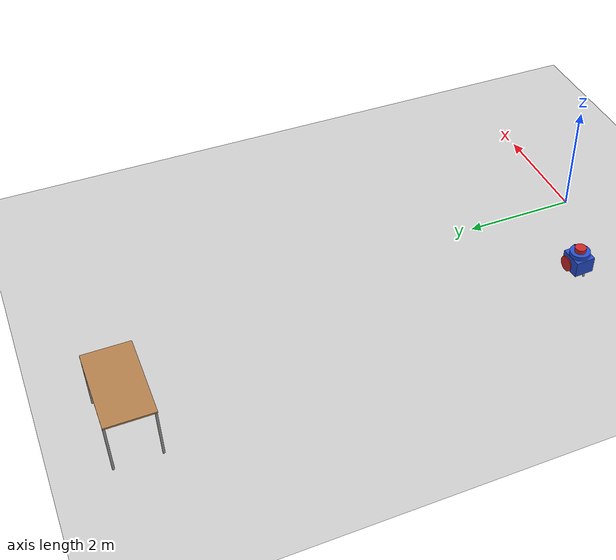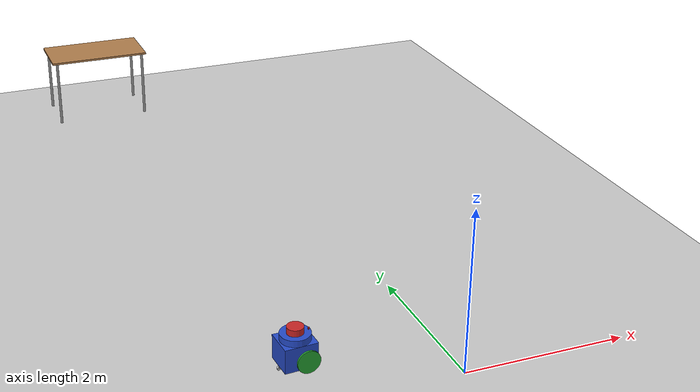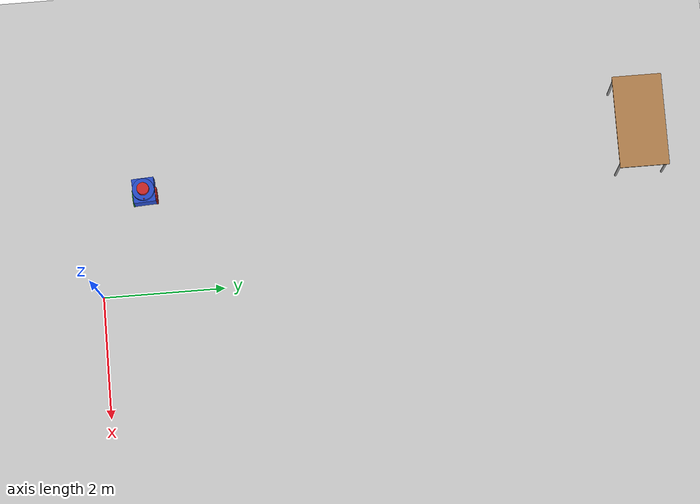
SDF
<sdf version="1.7">
 <world name="default">
  <light name="sun" type="directional">
   <pose>0 0 10 0 -0 0</pose>
   <diffuse>0.8 0.8 0.8 1</diffuse>
   <specular>0.2 0.2 0.2 1</specular>
   <attenuation>
    <range>1000</range>
    <constant>0.9</constant>
    <linear>0.01</linear>
    <quadratic>0.001</quadratic>
   </attenuation>
   <direction>-0.5 0.1 -0.9</direction>
   <spot><inner_angle>0</inner_angle><outer_angle>0</outer_angle><falloff>0</falloff></spot>
  </light>
  <gravity>0 0 -9.8</gravity>
  <magnetic_field>6e-06 2.3e-05 -4.2e-05</magnetic_field>
  <atmosphere type="adiabatic"/>
  <physics type="ode">
   <max_step_size>0.001</max_step_size>
   <real_time_factor>1</real_time_factor>
   <real_time_update_rate>1000</real_time_update_rate>
  </physics>
  <scene><ambient>0.4 0.4 0.4 1</ambient><background>0.7 0.7 0.7 1</background><shadows>1</shadows></scene>
  <spherical_coordinates>
   <surface_model>EARTH_WGS84</surface_model>
   <latitude_deg>0</latitude_deg>
   <longitude_deg>0</longitude_deg>
   <elevation>0</elevation>
   <heading_deg>0</heading_deg>
  </spherical_coordinates>
  <model name="subsumption_robot">
   <link name="base_footprint">
    <inertial>
     <pose>9.5e-05 0 0.296121 0 -0 0</pose>
     <mass>16.91</mass>
     <inertia>
      <ixx>0.381416</ixx>
      <ixy>0</ixy>
      <ixz>-0.000230207</ixz>
      <iyy>0.402951</iyy>
      <iyz>0</iyz>
      <izz>0.311837</izz>
     </inertia>
    </inertial>
    <collision name="base_footprint_fixed_joint_lump__base_link_collision">
     <pose>0 0 0.2 0 -0 0</pose>
     <geometry><box><size>0.4 0.36 0.3</size></box></geometry>
    </collision>
    <collision name="base_footprint_fixed_joint_lump__sonar_link_collision_1">
     <pose>0 0 0.39 0 -0 0</pose>
     <geometry><cylinder><length>0.08</length><radius>0.18</radius></cylinder></geometry>
    </collision>
    <collision name="base_footprint_fixed_joint_lump__camera_link_collision_2">
     <pose>0.16 0 0.44 0 -0 0</pose>
     <geometry><box><size>0.02 0.02 0.02</size></box></geometry>
    </collision>
    <collision name="base_footprint_fixed_joint_lump__laser_link_collision_3">
     <pose>0 0 0.47 0 -0 0</pose>
     <geometry><cylinder><length>0.08</length><radius>0.1</radius></cylinder></geometry>
    </collision>
    <visual name="base_footprint_fixed_joint_lump__base_link_visual">
     <pose>0 0 0.2 0 -0 0</pose>
     <geometry><box><size>0.4 0.36 0.3</size></box></geometry>
     <material>
      <script><name>Gazebo/Blue</name><uri>file://media/materials/scripts/gazebo.material</uri></script>
     </material>
    </visual>
    <visual name="base_footprint_fixed_joint_lump__sonar_link_visual_1">
     <pose>0 0 0.39 0 -0 0</pose>
     <geometry><cylinder><length>0.08</length><radius>0.18</radius></cylinder></geometry>
     <material>
      <script><name>Gazebo/Blue</name><uri>file://media/materials/scripts/gazebo.material</uri></script>
     </material>
    </visual>
    <visual name="base_footprint_fixed_joint_lump__camera_link_visual_2">
     <pose>0.16 0 0.44 0 -0 0</pose>
     <geometry><box><size>0.02 0.02 0.02</size></box></geometry>
     <material>
      <script><name>Gazebo/Red</name><uri>file://media/materials/scripts/gazebo.material</uri></script>
     </material>
    </visual>
    <visual name="base_footprint_fixed_joint_lump__laser_link_visual_3">
     <pose>0 0 0.47 0 -0 0</pose>
     <geometry><cylinder><length>0.08</length><radius>0.1</radius></cylinder></geometry>
     <material>
      <script><name>Gazebo/Red</name><uri>file://media/materials/scripts/gazebo.material</uri></script>
     </material>
    </visual>
    <sensor name="camera" type="camera">
     <visualize>1</visualize>
     <camera>
      <horizontal_fov>1.13443</horizontal_fov>
      <image><format>R8G8B8</format><width>640</width><height>480</height></image>
      <clip><near>0.05</near><far>50</far></clip>
     </camera>
     <plugin name="camera_controller" filename="libgazebo_ros_camera.so">
      <camera_name>mycamera</camera_name>
      <frame_name>camera_link</frame_name>
     </plugin>
     <pose>0.16 0 0.44 0 -0 0</pose>
    </sensor>
    <sensor name="laser" type="ray">
     <visualize>1</visualize>
     <update_rate>10</update_rate>
     <ray>
      <scan>
       <horizontal>
        <samples>360</samples>
        <resolution>1</resolution>
        <min_angle>-3.1415</min_angle>
        <max_angle>3.124</max_angle>
       </horizontal>
       <vertical><samples>1</samples><min_angle>0</min_angle><max_angle>0</max_angle></vertical>
      </scan>
      <range><min>0.2</min><max>10</max><resolution>0.01</resolution></range>
     </ray>
     <plugin name="laser_controller" filename="libgazebo_ros_ray_sensor.so">
      <ros><namespace>/</namespace><remapping>~/out:=scan</remapping></ros>
      <frameName>laser_link</frameName>
      <output_type>sensor_msgs/LaserScan</output_type>
     </plugin>
     <pose>0 0 0.47 0 -0 0</pose>
    </sensor>
   </link>
   <joint name="caster_joint" type="revolute">
    <pose relative_to="base_footprint">-0.15 0 0.035 0 -0 3.1415</pose>
    <parent>base_footprint</parent>
    <child>caster_link</child>
    <axis>
     <xyz>0 0 1</xyz>
     <limit><lower>-1e+16</lower><upper>1e+16</upper></limit>
     <dynamics><spring_reference>0</spring_reference><spring_stiffness>0</spring_stiffness></dynamics>
    </axis>
   </joint>
   <link name="caster_link">
    <pose relative_to="caster_joint">0 0 0 0 -0 0</pose>
    <inertial>
     <mass>0.1</mass>
     <inertia>
      <ixx>1.5e-05</ixx>
      <ixy>0</ixy>
      <ixz>0</ixz>
      <iyy>2.83333e-05</iyy>
      <iyz>0</iyz>
      <izz>2.83333e-05</izz>
     </inertia>
    </inertial>
    <collision name="caster_link_collision">
     <pose>0.025 0 0 0 -0 0</pose>
     <geometry><box><size>0.05 0.03 0.03</size></box></geometry>
    </collision>
    <visual name="caster_link_visual">
     <pose>0.025 0 0 0 -0 0</pose>
     <geometry><box><size>0.05 0.03 0.03</size></box></geometry>
     <material>
      <script><name>Gazebo/Silver</name><uri>file://media/materials/scripts/gazebo.material</uri></script>
     </material>
    </visual>
   </link>
   <joint name="caster_wheel_joint" type="revolute">
    <pose relative_to="caster_link">0.05 0 -0.015 1.5708 -0 0</pose>
    <parent>caster_link</parent>
    <child>caster_wheel_link</child>
    <axis>
     <xyz>0 0 1</xyz>
     <limit><lower>-1e+16</lower><upper>1e+16</upper></limit>
     <dynamics><spring_reference>0</spring_reference><spring_stiffness>0</spring_stiffness></dynamics>
    </axis>
   </joint>
   <link name="caster_wheel_link">
    <pose relative_to="caster_wheel_joint">0 0 0 0 -0 0</pose>
    <inertial>
     <mass>0.1</mass>
     <inertia><ixx>1.75e-05</ixx><ixy>0</ixy><ixz>0</ixz><iyy>1.75e-05</iyy><iyz>0</iyz><izz>2e-05</izz></inertia>
    </inertial>
    <collision name="caster_wheel_link_collision">
     <geometry><cylinder><length>0.03</length><radius>0.02</radius></cylinder></geometry>
    </collision>
    <visual name="caster_wheel_link_visual">
     <geometry><cylinder><length>0.03</length><radius>0.02</radius></cylinder></geometry>
     <material>
      <script><name>Gazebo/Silver</name><uri>file://media/materials/scripts/gazebo.material</uri></script>
     </material>
    </visual>
   </link>
   <joint name="left_wheel_joint" type="revolute">
    <pose relative_to="base_footprint">0.08 0.19 0.14 -1.5708 0 0</pose>
    <parent>base_footprint</parent>
    <child>left_wheel_link</child>
    <axis>
     <xyz>0 0 1</xyz>
     <limit><lower>-1e+16</lower><upper>1e+16</upper></limit>
     <dynamics><spring_reference>0</spring_reference><spring_stiffness>0</spring_stiffness></dynamics>
    </axis>
   </joint>
   <link name="left_wheel_link">
    <pose relative_to="left_wheel_joint">0 0 0 0 -0 0</pose>
    <inertial>
     <mass>0.1</mass>
     <inertia>
      <ixx>0.000493333</ixx>
      <ixy>0</ixy>
      <ixz>0</ixz>
      <iyy>0.000493333</iyy>
      <iyz>0</iyz>
      <izz>0.00098</izz>
     </inertia>
    </inertial>
    <collision name="left_wheel_link_collision">
     <geometry><cylinder><length>0.02</length><radius>0.14</radius></cylinder></geometry>
    </collision>
    <visual name="left_wheel_link_visual">
     <geometry><cylinder><length>0.02</length><radius>0.14</radius></cylinder></geometry>
     <material>
      <script><name>Gazebo/Red</name><uri>file://media/materials/scripts/gazebo.material</uri></script>
     </material>
    </visual>
   </link>
   <joint name="right_wheel_joint" type="revolute">
    <pose relative_to="base_footprint">0.08 -0.19 0.14 -1.5708 0 0</pose>
    <parent>base_footprint</parent>
    <child>right_wheel_link</child>
    <axis>
     <xyz>0 0 1</xyz>
     <limit><lower>-1e+16</lower><upper>1e+16</upper></limit>
     <dynamics><spring_reference>0</spring_reference><spring_stiffness>0</spring_stiffness></dynamics>
    </axis>
   </joint>
   <link name="right_wheel_link">
    <pose relative_to="right_wheel_joint">0 0 0 0 -0 0</pose>
    <inertial>
     <mass>0.1</mass>
     <inertia>
      <ixx>0.000493333</ixx>
      <ixy>0</ixy>
      <ixz>0</ixz>
      <iyy>0.000493333</iyy>
      <iyz>0</iyz>
      <izz>0.00098</izz>
     </inertia>
    </inertial>
    <collision name="right_wheel_link_collision">
     <geometry><cylinder><length>0.02</length><radius>0.14</radius></cylinder></geometry>
    </collision>
    <visual name="right_wheel_link_visual">
     <geometry><cylinder><length>0.02</length><radius>0.14</radius></cylinder></geometry>
     <material>
      <script><name>Gazebo/Green</name><uri>file://media/materials/scripts/gazebo.material</uri></script>
     </material>
    </visual>
   </link>
   <plugin name="joint_state_publisher" filename="libgazebo_ros_joint_state_publisher.so">
    <joint_name>caster_wheel_joint</joint_name>
    <joint_name>caster_joint</joint_name>
    <joint_name>left_wheel_joint</joint_name>
    <joint_name>right_wheel_joint</joint_name>
   </plugin>
   <static>0</static>
   <plugin name="differential_drive_controller" filename="libgazebo_ros_diff_drive.so">
    <update_rate>20</update_rate>
    <left_joint>left_wheel_joint</left_joint>
    <right_joint>right_wheel_joint</right_joint>
    <robotBaseFrame>base_footprint</robotBaseFrame>
    <wheel_separation>0.38</wheel_separation>
    <wheel_diameter>0.28</wheel_diameter>
    <publish_odom>1</publish_odom>
    <publish_odom_tf>1</publish_odom_tf>
    <publish_wheel_tf>1</publish_wheel_tf>
    <odometry_frame>odom</odometry_frame>
    <robot_base_frame>base_footprint</robot_base_frame>
    <command_topic>cmd_vel</command_topic>
   </plugin>
   <pose>-1.67257 0.795276 -0.000382 -1e-05 -0.004565 0.051827</pose>
  </model>
  <model name="road_plane">
   <static>1</static>
   <link name="link">
    <collision name="collision">
     <geometry><plane><normal>0 0 1</normal><size>20 20</size></plane></geometry>
     <surface><friction><ode><mu>100</mu><mu2>50</mu2></ode></friction></surface>
    </collision>
    <visual name="visual">
     <cast_shadows>0</cast_shadows>
     <geometry><plane><normal>0 0 1</normal><size>20 20</size></plane></geometry>
     <material>
      <script>
       <uri>model://road_plane/materials/scripts</uri>
       <uri>model://road_plane/materials/textures</uri>
       <name>road_plane/Diffuse</name>
      </script>
     </material>
    </visual>
   </link>
   <pose>-1.1819 0.224891 0 0 -0 0</pose>
  </model>
  <model name="table">
   <static>1</static>
   <link name="link">
    <collision name="surface">
     <pose>0 0 1 0 -0 0</pose>
     <geometry><box><size>1.5 0.8 0.03</size></box></geometry>
     <surface><friction><ode><mu>0.6</mu><mu2>0.6</mu2></ode></friction></surface>
    </collision>
    <visual name="visual1">
     <pose>0 0 1 0 -0 0</pose>
     <geometry><box><size>1.5 0.8 0.03</size></box></geometry>
     <material>
      <script><uri>file://media/materials/scripts/gazebo.material</uri><name>Gazebo/Wood</name></script>
     </material>
    </visual>
    <collision name="front_left_leg">
     <pose>0.68 0.38 0.5 0 -0 0</pose>
     <geometry><cylinder><radius>0.02</radius><length>1</length></cylinder></geometry>
    </collision>
    <visual name="front_left_leg">
     <pose>0.68 0.38 0.5 0 -0 0</pose>
     <geometry><cylinder><radius>0.02</radius><length>1</length></cylinder></geometry>
     <material>
      <script><uri>file://media/materials/scripts/gazebo.material</uri><name>Gazebo/Grey</name></script>
     </material>
    </visual>
    <collision name="front_right_leg">
     <pose>0.68 -0.38 0.5 0 -0 0</pose>
     <geometry><cylinder><radius>0.02</radius><length>1</length></cylinder></geometry>
    </collision>
    <visual name="front_right_leg">
     <pose>0.68 -0.38 0.5 0 -0 0</pose>
     <geometry><cylinder><radius>0.02</radius><length>1</length></cylinder></geometry>
     <material>
      <script><uri>file://media/materials/scripts/gazebo.material</uri><name>Gazebo/Grey</name></script>
     </material>
    </visual>
    <collision name="back_right_leg">
     <pose>-0.68 -0.38 0.5 0 -0 0</pose>
     <geometry><cylinder><radius>0.02</radius><length>1</length></cylinder></geometry>
    </collision>
    <visual name="back_right_leg">
     <pose>-0.68 -0.38 0.5 0 -0 0</pose>
     <geometry><cylinder><radius>0.02</radius><length>1</length></cylinder></geometry>
     <material>
      <script><uri>file://media/materials/scripts/gazebo.material</uri><name>Gazebo/Grey</name></script>
     </material>
    </visual>
    <collision name="back_left_leg">
     <pose>-0.68 0.38 0.5 0 -0 0</pose>
     <geometry><cylinder><radius>0.02</radius><length>1</length></cylinder></geometry>
    </collision>
    <visual name="back_left_leg">
     <pose>-0.68 0.38 0.5 0 -0 0</pose>
     <geometry><cylinder><radius>0.02</radius><length>1</length></cylinder></geometry>
     <material>
      <script><uri>file://media/materials/scripts/gazebo.material</uri><name>Gazebo/Grey</name></script>
     </material>
    </visual>
   </link>
   <pose>-2.04566 8.93168 0 0 -0 0</pose>
  </model>
 </world>
</sdf>
